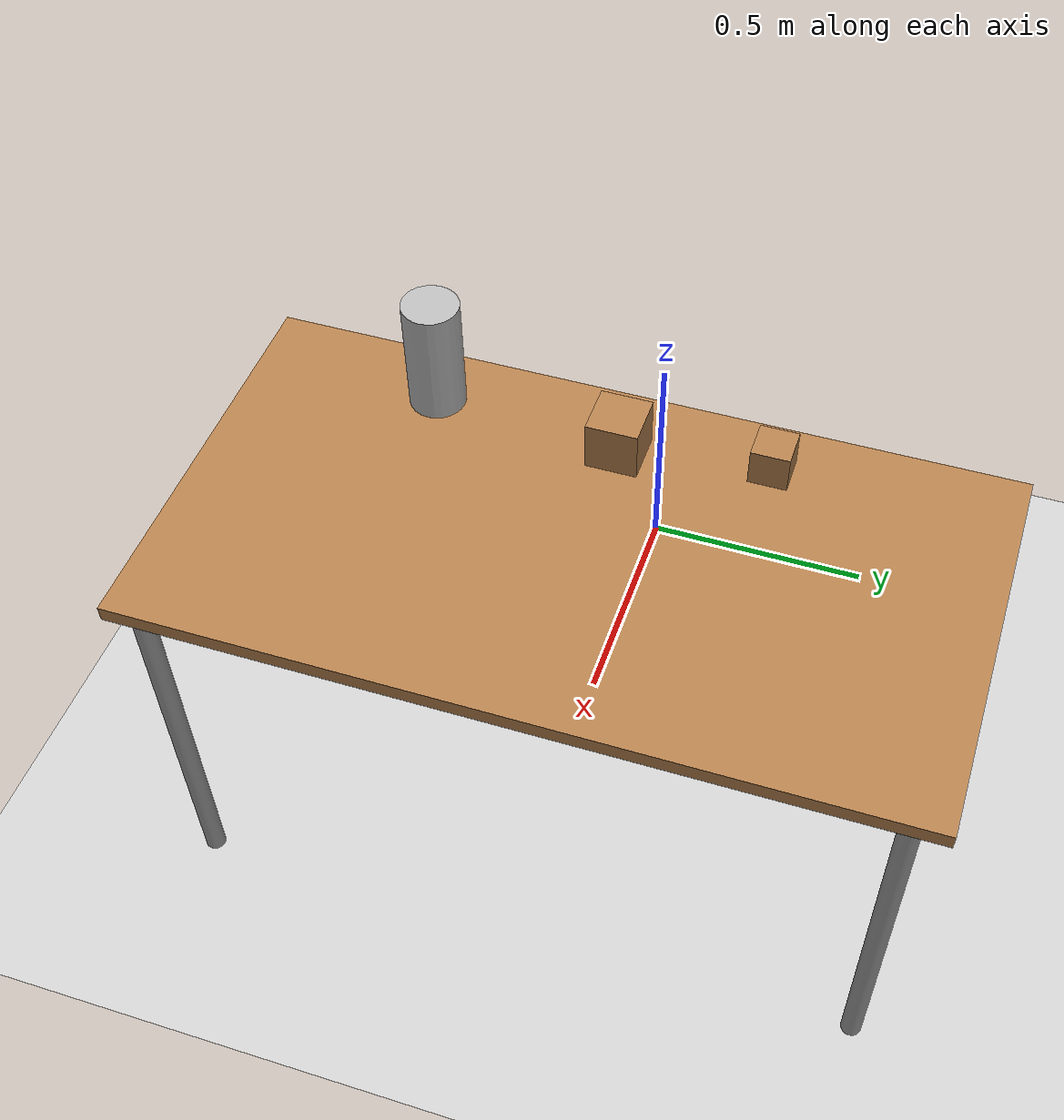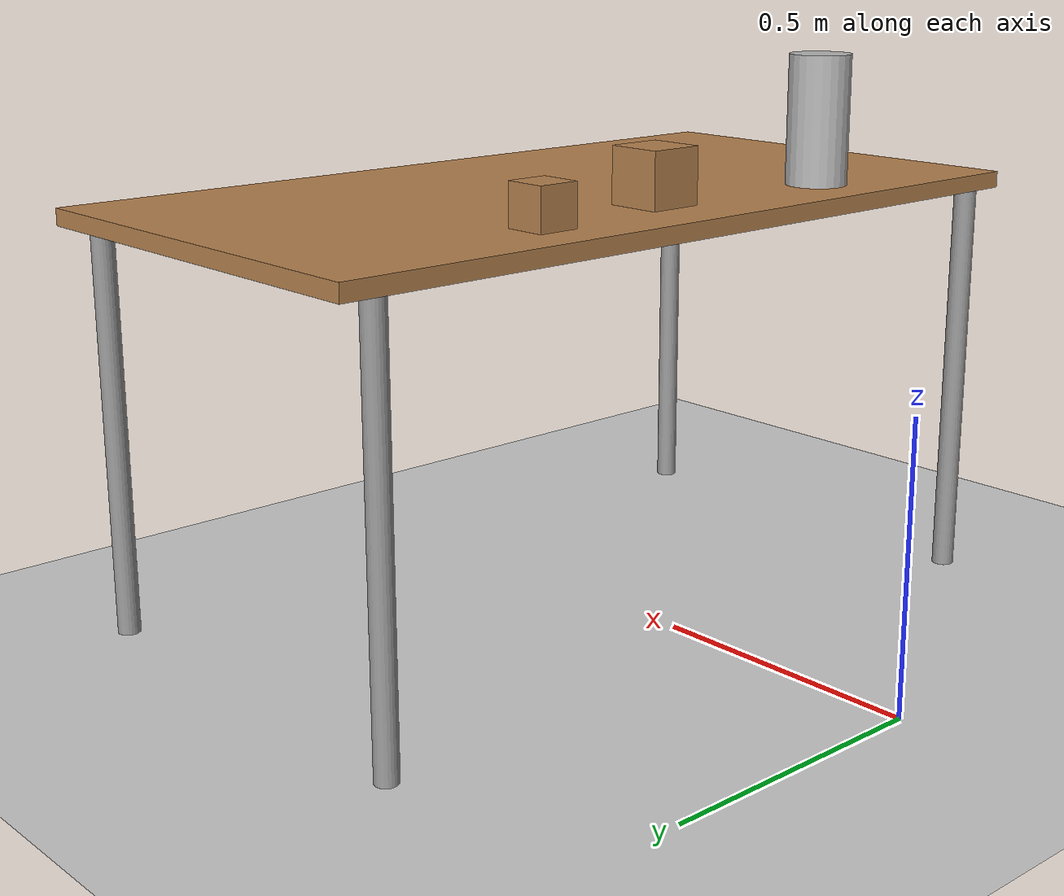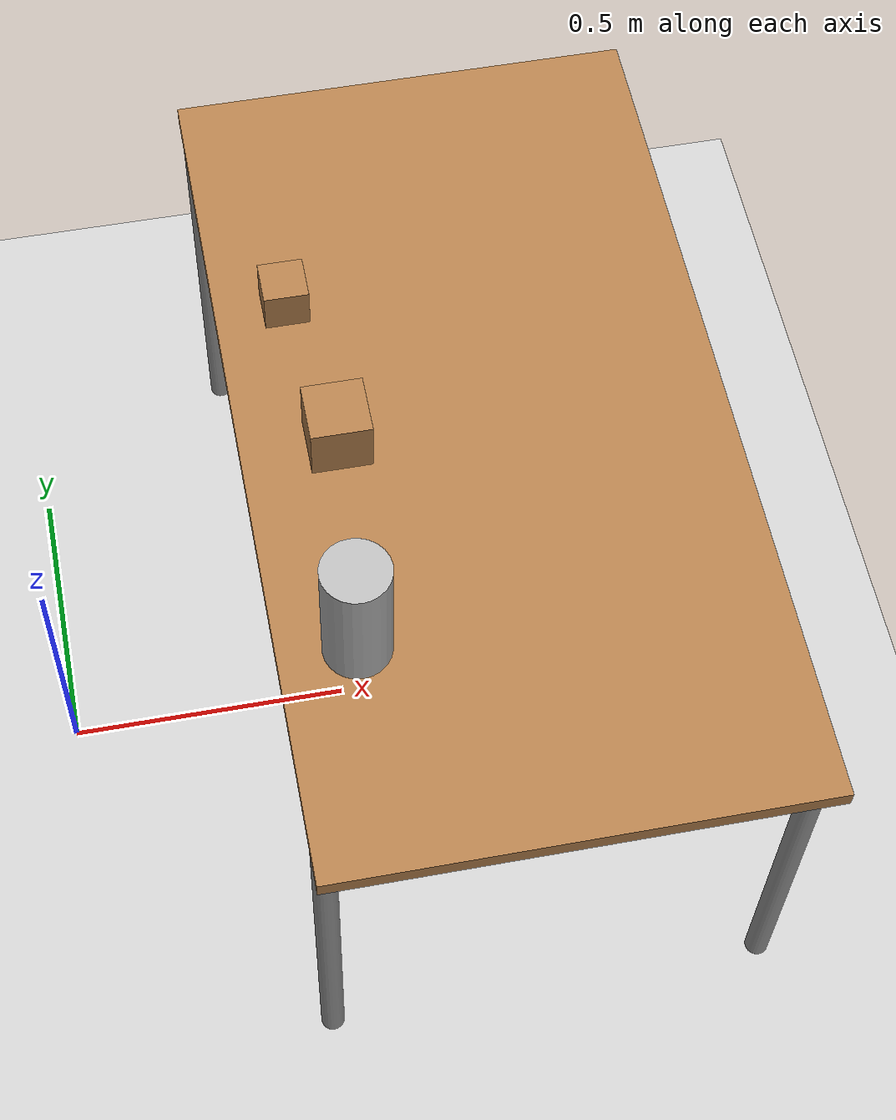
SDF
<sdf version="1.4">
 <world name="default">
  <model name="ground_plane">
   <static>1</static>
   <link name="link">
    <collision name="collision">
     <geometry><plane><normal>0 0 1</normal><size>100 100</size></plane></geometry>
     <surface><friction><ode><mu>100</mu><mu2>50</mu2></ode></friction></surface>
    </collision>
    <visual name="visual">
     <cast_shadows>0</cast_shadows>
     <geometry><plane><normal>0 0 1</normal><size>100 100</size></plane></geometry>
     <material>
      <script><uri>file://media/materials/scripts/gazebo.material</uri><name>Gazebo/Grey</name></script>
     </material>
    </visual>
    <velocity_decay><linear>0</linear><angular>0</angular></velocity_decay>
   </link>
  </model>
  <light name="sun" type="directional">
   <pose>0 0 10 0 -0 0</pose>
   <diffuse>0.8 0.8 0.8 1</diffuse>
   <specular>0.2 0.2 0.2 1</specular>
   <attenuation>
    <range>1000</range>
    <constant>0.9</constant>
    <linear>0.01</linear>
    <quadratic>0.001</quadratic>
   </attenuation>
   <direction>-0.5 0.1 -0.9</direction>
  </light>
  <physics type="ode">
   <max_step_size>0.001</max_step_size>
   <real_time_factor>1</real_time_factor>
   <real_time_update_rate>1000</real_time_update_rate>
   <gravity>0 0 -9.8</gravity>
  </physics>
  <scene><ambient>0.4 0.4 0.4 1</ambient><background>0.7 0.7 0.7 1</background><shadows>1</shadows></scene>
  <spherical_coordinates>
   <surface_model>EARTH_WGS84</surface_model>
   <latitude_deg>0</latitude_deg>
   <longitude_deg>0</longitude_deg>
   <elevation>0</elevation>
   <heading_deg>0</heading_deg>
  </spherical_coordinates>
  <model name="table">
   <static>1</static>
   <link name="link">
    <collision name="surface">
     <pose>0 0 0.75 0 -0 0</pose>
     <geometry><box><size>1.5 0.8 0.03</size></box></geometry>
     <surface><friction><ode><mu>0.6</mu><mu2>0.6</mu2></ode></friction></surface>
    </collision>
    <visual name="visual1">
     <pose>0 0 0.75 0 -0 0</pose>
     <geometry><box><size>1.5 0.8 0.03</size></box></geometry>
     <material>
      <script><uri>file://media/materials/scripts/gazebo.material</uri><name>Gazebo/Wood</name></script>
     </material>
    </visual>
    <collision name="front_left_leg">
     <pose>0.68 0.38 0.375 0 -0 0</pose>
     <geometry><cylinder><radius>0.02</radius><length>0.75</length></cylinder></geometry>
    </collision>
    <visual name="front_left_leg">
     <pose>0.68 0.38 0.375 0 -0 0</pose>
     <geometry><cylinder><radius>0.02</radius><length>0.75</length></cylinder></geometry>
     <material>
      <script><uri>file://media/materials/scripts/gazebo.material</uri><name>Gazebo/Grey</name></script>
     </material>
    </visual>
    <collision name="front_right_leg">
     <pose>0.68 -0.38 0.375 0 -0 0</pose>
     <geometry><cylinder><radius>0.02</radius><length>0.75</length></cylinder></geometry>
    </collision>
    <visual name="front_right_leg">
     <pose>0.68 -0.38 0.375 0 -0 0</pose>
     <geometry><cylinder><radius>0.02</radius><length>0.75</length></cylinder></geometry>
     <material>
      <script><uri>file://media/materials/scripts/gazebo.material</uri><name>Gazebo/Grey</name></script>
     </material>
    </visual>
    <collision name="back_right_leg">
     <pose>-0.68 -0.38 0.375 0 -0 0</pose>
     <geometry><cylinder><radius>0.02</radius><length>0.75</length></cylinder></geometry>
    </collision>
    <visual name="back_right_leg">
     <pose>-0.68 -0.38 0.375 0 -0 0</pose>
     <geometry><cylinder><radius>0.02</radius><length>0.75</length></cylinder></geometry>
     <material>
      <script><uri>file://media/materials/scripts/gazebo.material</uri><name>Gazebo/Grey</name></script>
     </material>
    </visual>
    <collision name="back_left_leg">
     <pose>-0.68 0.38 0.375 0 -0 0</pose>
     <geometry><cylinder><radius>0.02</radius><length>0.75</length></cylinder></geometry>
    </collision>
    <visual name="back_left_leg">
     <pose>-0.68 0.38 0.375 0 -0 0</pose>
     <geometry><cylinder><radius>0.02</radius><length>0.75</length></cylinder></geometry>
     <material>
      <script><uri>file://media/materials/scripts/gazebo.material</uri><name>Gazebo/Grey</name></script>
     </material>
    </visual>
    <velocity_decay><linear>0</linear><angular>0</angular></velocity_decay>
   </link>
   <pose>0.756794 0.051002 0 0 -0 1.57233</pose>
  </model>
  <model name="wood_cube_10cm">
   <link name="link">
    <pose>0 0 0.05 0 -0 0</pose>
    <inertial>
     <mass>0.5167</mass>
     <inertia>
      <ixx>0.000861167</ixx>
      <ixy>0</ixy>
      <ixz>0</ixz>
      <iyy>0.000861167</iyy>
      <iyz>0</iyz>
      <izz>0.000861167</izz>
     </inertia>
    </inertial>
    <collision name="collision">
     <geometry><box><size>0.1 0.1 0.1</size></box></geometry>
     <surface><contact><ode><max_vel>0.1</max_vel><min_depth>0.001</min_depth></ode></contact></surface>
    </collision>
    <visual name="visual">
     <geometry><box><size>0.1 0.1 0.1</size></box></geometry>
     <material>
      <script><uri>file://media/materials/scripts/gazebo.material</uri><name>Gazebo/Wood</name></script>
     </material>
    </visual>
    <velocity_decay><linear>0</linear><angular>0</angular></velocity_decay>
   </link>
   <pose>0.516159 0.048656 0.764047 0 -0 0</pose>
   <static>0</static>
  </model>
  <model name="wood_cube_7_5cm">
   <link name="link">
    <pose>0 0 0.0375 0 -0 0</pose>
    <inertial>
     <mass>0.2249</mass>
     <inertia>
      <ixx>0.000210844</ixx>
      <ixy>0</ixy>
      <ixz>0</ixz>
      <iyy>0.000210844</iyy>
      <iyz>0</iyz>
      <izz>0.000210844</izz>
     </inertia>
    </inertial>
    <collision name="collision">
     <geometry><box><size>0.075 0.075 0.075</size></box></geometry>
     <surface><contact><ode><max_vel>0.1</max_vel><min_depth>0.001</min_depth></ode></contact></surface>
    </collision>
    <visual name="visual">
     <geometry><box><size>0.075 0.075 0.075</size></box></geometry>
     <material>
      <script><uri>file://media/materials/scripts/gazebo.material</uri><name>Gazebo/Wood</name></script>
     </material>
    </visual>
    <velocity_decay><linear>0</linear><angular>0</angular></velocity_decay>
   </link>
   <pose>0.474476 0.33372 0.764388 0 -0 0</pose>
   <static>0</static>
  </model>
  <model name="baltica">
   <link name="link">
    <pose>0 0 0.115 0 -0 0</pose>
    <inertial>
     <mass>0.39</mass>
     <inertia><ixx>0.00058</ixx><ixy>0</ixy><ixz>0</ixz><iyy>0.00058</iyy><iyz>0</iyz><izz>0.00019</izz></inertia>
    </inertial>
    <collision name="collision">
     <geometry><cylinder><radius>0.055</radius><length>0.23</length></cylinder></geometry>
    </collision>
    <visual name="visual">
     <geometry><cylinder><radius>0.055</radius><length>0.23</length></cylinder></geometry>
     <material>
      <script>
       <uri>model://baltica/materials/scripts</uri>
       <uri>model://baltica/materials/textures</uri>
       <name>Baltica/Diffuse</name>
      </script>
     </material>
    </visual>
    <velocity_decay><linear>0</linear><angular>0</angular></velocity_decay>
   </link>
   <pose>0.483207 -0.325276 0.765001 7e-06 8e-06 0.000785</pose>
   <static>0</static>
  </model>
 </world>
</sdf>
